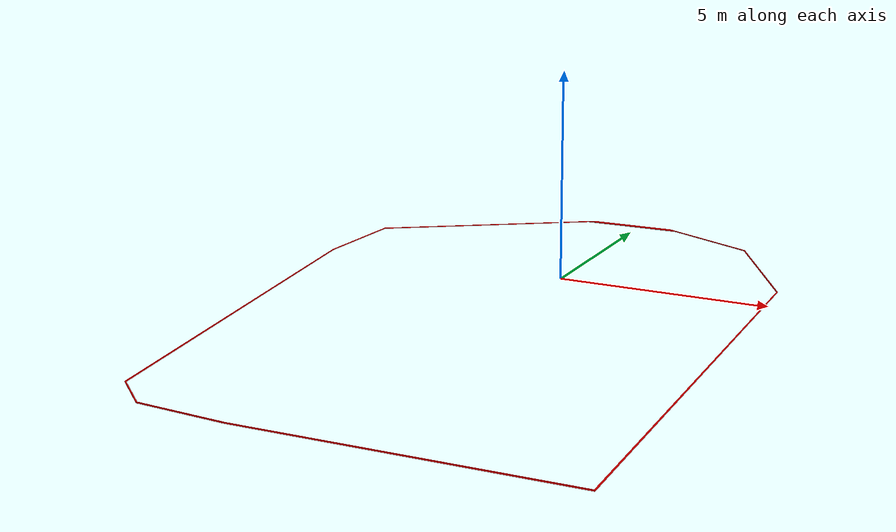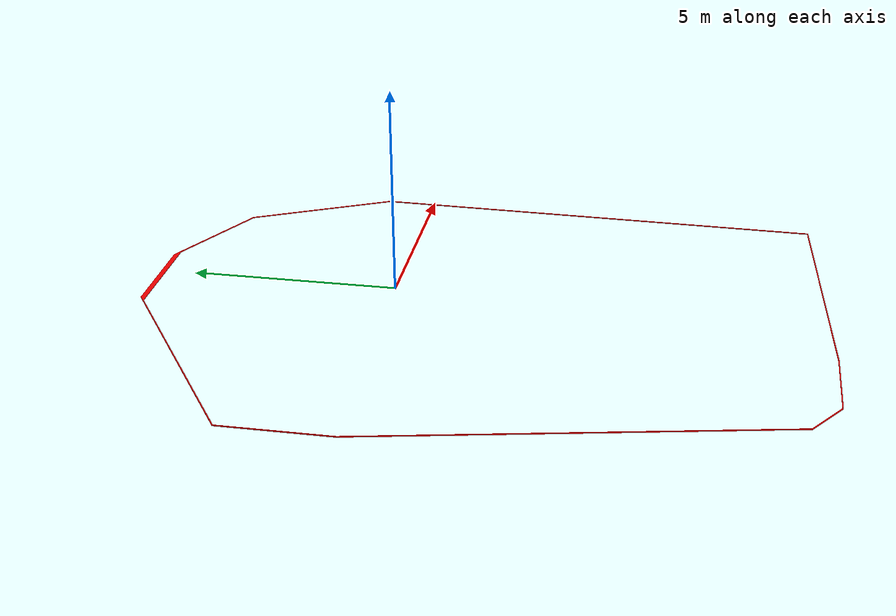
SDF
<?xml version="1.0"?>
<sdf version="1.6">
  <model name="line_model">
    <static>true</static>

    <link name="line_link">
      <visual name="line_visual">
        <geometry>
          <mesh>
            <uri>model://line_model/meshes/Line.stl</uri>
            <scale>1.220000 1.220000 1.000000</scale>
          </mesh>
        </geometry>

        <material>
          <ambient>1 0 0 1</ambient>
          <diffuse>1 0 0 1</diffuse>
          <emissive>1 0 0 1</emissive>
        </material>
      </visual>
    </link>
  </model>
</sdf>
